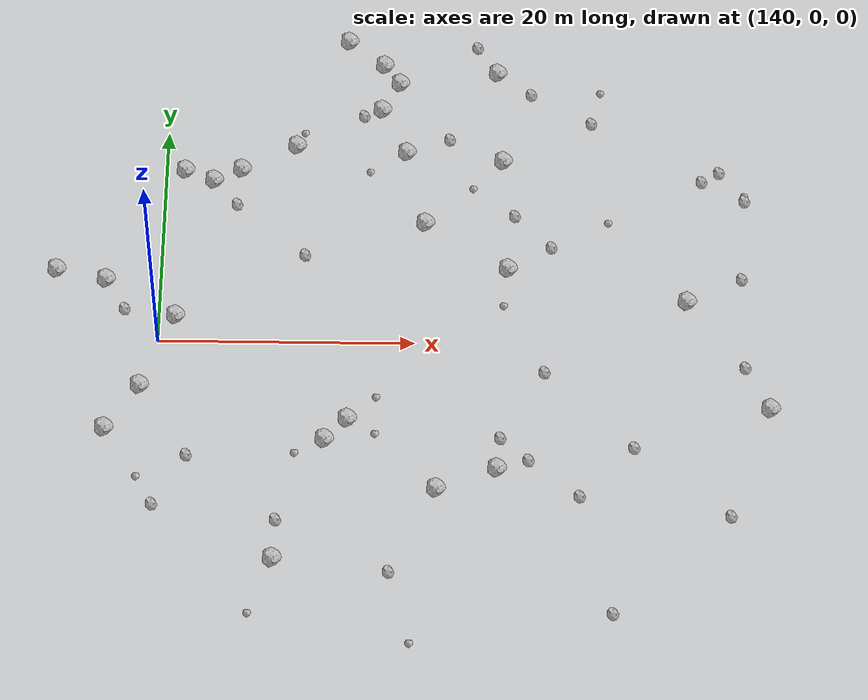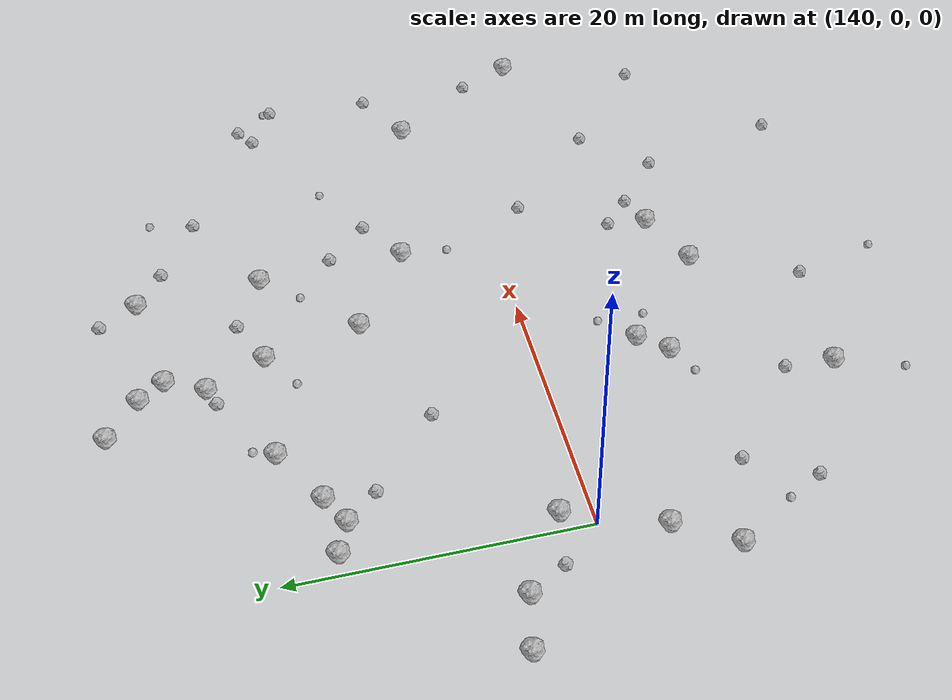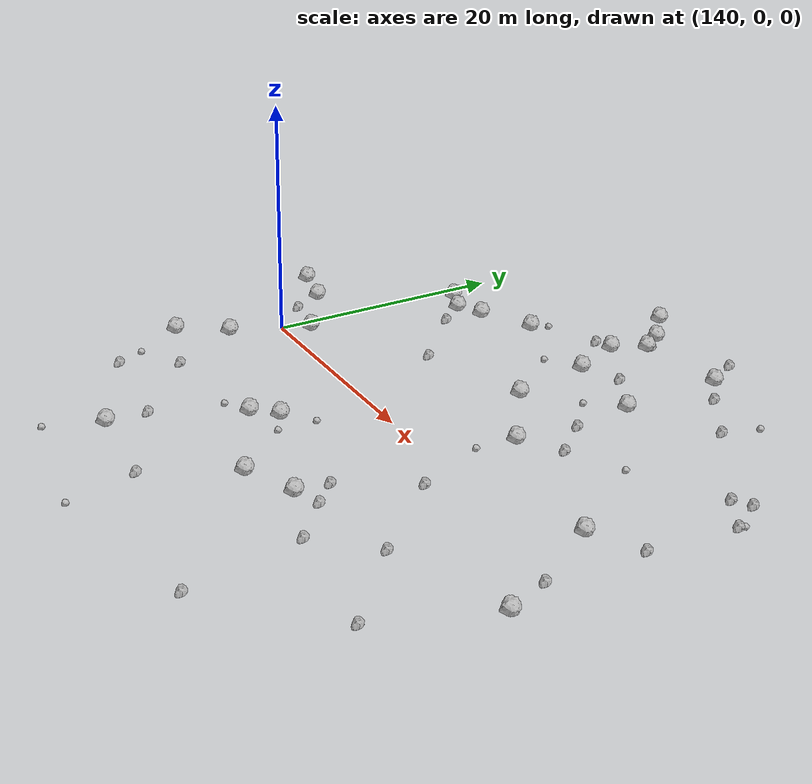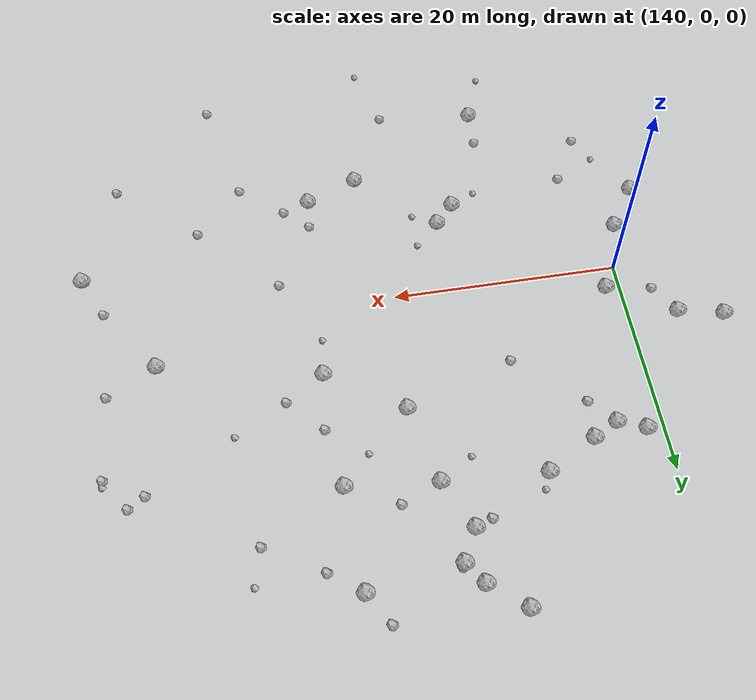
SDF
<sdf version="1.6">
 <world name="default">
  <include><uri>model://sun</uri></include>
  <model name="rock1_4_2">
   <include><uri>model://rock1</uri><pose>146.01292373861213 16.321096230633174 0.5 0 0 0</pose></include>
  </model>
  <model name="rock1_4_3">
   <include><uri>model://rock1</uri><pose>153.18893208974066 -9.077278653171142 0.5 0 0 0</pose></include>
  </model>
  <model name="rock1_4_4">
   <include><uri>model://rock1</uri><pose>166.39945779794243 26.169394335158373 0.5 0 0 0</pose></include>
  </model>
  <model name="rock1_4_5">
   <include><uri>model://rock1</uri><pose>138.83320970277157 -4.358342526872093 0.5 0 0 0</pose></include>
  </model>
  <model name="rock1_4_6">
   <include><uri>model://rock1</uri><pose>161.76033162731838 -13.393764174916889 0.5 0 0 0</pose></include>
  </model>
  <model name="rock1_4_7">
   <include><uri>model://rock1</uri><pose>157.12143858758608 22.357590255763135 0.5 0 0 0</pose></include>
  </model>
  <model name="rock1_4_8">
   <include><uri>model://rock1</uri><pose>141.5076263320921 16.1580135212961 0.5 0 0 0</pose></include>
  </model>
  <model name="rock1_4_9">
   <include><uri>model://rock1</uri><pose>160.70289378506877 11.222318924339874 0.5 0 0 0</pose></include>
  </model>
  <model name="rock1_4_10">
   <include><uri>model://rock1</uri><pose>154.90134020988904 -7.211957616958163 0.5 0 0 0</pose></include>
  </model>
  <model name="rock1_4_11">
   <include><uri>model://rock1</uri><pose>187.36100590682446 -5.908717844583737 0.5 0 0 0</pose></include>
  </model>
  <model name="rock1_4_12">
   <include><uri>model://rock1</uri><pose>136.30847646627373 -8.268294434447437 0.5 0 0 0</pose></include>
  </model>
  <model name="rock1_4_13">
   <include><uri>model://rock1</uri><pose>166.37106005827033 -11.543052413967935 0.5 0 0 0</pose></include>
  </model>
  <model name="rock1_4_14">
   <include><uri>model://rock1</uri><pose>166.85285485012008 17.340084802821934 0.5 0 0 0</pose></include>
  </model>
  <model name="rock1_4_15">
   <include><uri>model://rock1</uri><pose>143.82640872847395 15.20666125602665 0.5 0 0 0</pose></include>
  </model>
  <model name="rock1_4_16">
   <include><uri>model://rock1</uri><pose>181.200884410853 3.9424425685026563 0.5 0 0 0</pose></include>
  </model>
  <model name="rock1_4_17">
   <include><uri>model://rock1</uri><pose>141.3300765813875 2.149493236909045 0.5 0 0 0</pose></include>
  </model>
  <model name="rock1_4_18">
   <include><uri>model://rock1</uri><pose>131.81176725146497 6.426564913343512 0.5 0 0 0</pose></include>
  </model>
  <model name="rock1_4_19">
   <include><uri>model://rock1</uri><pose>149.53249420475123 -19.67776790808795 0.5 0 0 0</pose></include>
  </model>
  <model name="rock1_4_20">
   <include><uri>model://rock1</uri><pose>167.22517279037825 6.8893104701691 0.5 0 0 0</pose></include>
  </model>
  <model name="rock1_4_21">
   <include><uri>model://rock1</uri><pose>158.51727028028034 25.05043931871679 0.5 0 0 0</pose></include>
  </model>
  <model name="rock1_4_22">
   <include><uri>model://rock1</uri><pose>159.1472753499404 18.127294659113034 0.5 0 0 0</pose></include>
  </model>
  <model name="rock1_4_23">
   <include><uri>model://rock1</uri><pose>150.34101940992736 18.684495872349117 0.5 0 0 0</pose></include>
  </model>
  <model name="rock1_4_24">
   <include><uri>model://rock1</uri><pose>154.3226682056324 29.27551309641214 0.5 0 0 0</pose></include>
  </model>
  <model name="rock1_4_25">
   <include><uri>model://rock1</uri><pose>135.74074956760685 5.522126512602036 0.5 0 0 0</pose></include>
  </model>
  <model name="rock1_4_26">
   <include><uri>model://rock1</uri><pose>157.2393273769253 26.883761720704385 0.5 0 0 0</pose></include>
  </model>
  <model name="rock2_4_0">
   <include><uri>model://rock2</uri><pose>137.30254289896547 2.8379808679979277 0.3 0 0 0</pose></include>
  </model>
  <model name="rock2_4_1">
   <include><uri>model://rock2</uri><pose>155.65341575014264 21.825460685432986 0.3 0 0 0</pose></include>
  </model>
  <model name="rock2_4_2">
   <include><uri>model://rock2</uri><pose>182.6106733377859 15.611531949223291 0.3 0 0 0</pose></include>
  </model>
  <model name="rock2_4_3">
   <include><uri>model://rock2</uri><pose>158.24020994842255 -20.658150123019823 0.3 0 0 0</pose></include>
  </model>
  <model name="rock2_4_4">
   <include><uri>model://rock2</uri><pose>170.0117814260331 -2.694887389129775 0.3 0 0 0</pose></include>
  </model>
  <model name="rock2_4_5">
   <include><uri>model://rock2</uri><pose>185.53204023740827 -2.0772857355108414 0.3 0 0 0</pose></include>
  </model>
  <model name="rock2_4_6">
   <include><uri>model://rock2</uri><pose>170.62615594715632 9.075677533254954 0.3 0 0 0</pose></include>
  </model>
  <model name="rock2_4_7">
   <include><uri>model://rock2</uri><pose>142.6612561760401 -10.544135570952548 0.3 0 0 0</pose></include>
  </model>
  <model name="rock2_4_8">
   <include><uri>model://rock2</uri><pose>172.61419892302308 -13.87257291305081 0.3 0 0 0</pose></include>
  </model>
  <model name="rock2_4_9">
   <include><uri>model://rock2</uri><pose>164.7602069678603 28.889613603691643 0.3 0 0 0</pose></include>
  </model>
  <model name="rock2_4_10">
   <include><uri>model://rock2</uri><pose>184.02752224285433 -15.488511243663263 0.3 0 0 0</pose></include>
  </model>
  <model name="rock2_4_11">
   <include><uri>model://rock2</uri><pose>166.60204745124207 -8.73587043395533 0.3 0 0 0</pose></include>
  </model>
  <model name="rock2_4_12">
   <include><uri>model://rock2</uri><pose>173.90402734206452 21.290573367542926 0.3 0 0 0</pose></include>
  </model>
  <model name="rock2_4_13">
   <include><uri>model://rock2</uri><pose>174.9793263869394 -24.05334061062311 0.3 0 0 0</pose></include>
  </model>
  <model name="rock2_4_14">
   <include><uri>model://rock2</uri><pose>158.72523260248926 25.340408754108495 0.3 0 0 0</pose></include>
  </model>
  <model name="rock2_4_15">
   <include><uri>model://rock2</uri><pose>168.75646064646384 -10.7027938267329 0.3 0 0 0</pose></include>
  </model>
  <model name="rock2_4_16">
   <include><uri>model://rock2</uri><pose>167.74647065285782 12.081618504400438 0.3 0 0 0</pose></include>
  </model>
  <model name="rock2_4_17">
   <include><uri>model://rock2</uri><pose>151.25053207557738 8.116845848225609 0.3 0 0 0</pose></include>
  </model>
  <model name="rock2_4_18">
   <include><uri>model://rock2</uri><pose>149.64062603335677 -16.21478991345475 0.3 0 0 0</pose></include>
  </model>
  <model name="rock2_4_19">
   <include><uri>model://rock2</uri><pose>162.549312771943 19.5480542247276 0.3 0 0 0</pose></include>
  </model>
  <model name="rock2_4_20">
   <include><uri>model://rock2</uri><pose>184.02079670469772 16.521770998833603 0.3 0 0 0</pose></include>
  </model>
  <model name="rock2_4_21">
   <include><uri>model://rock2</uri><pose>176.81857040117956 -9.473282233490426 0.3 0 0 0</pose></include>
  </model>
  <model name="rock2_4_22">
   <include><uri>model://rock2</uri><pose>145.7140172654489 12.962635101188418 0.3 0 0 0</pose></include>
  </model>
  <model name="rock2_4_23">
   <include><uri>model://rock2</uri><pose>185.95604634731785 13.757390072928217 0.3 0 0 0</pose></include>
  </model>
  <model name="rock2_4_24">
   <include><uri>model://rock2</uri><pose>169.09536855043055 24.147157159586 0.3 0 0 0</pose></include>
  </model>
  <model name="rock2_4_25">
   <include><uri>model://rock2</uri><pose>185.51383199562665 6.219216738672863 0.3 0 0 0</pose></include>
  </model>
  <model name="rock2_4_26">
   <include><uri>model://rock2</uri><pose>140.23147359251556 -14.93603950942773 0.3 0 0 0</pose></include>
  </model>
  <model name="rock3_4_0">
   <include><uri>model://rock3</uri><pose>138.91974819978367 -12.492842220414474 0.2 0 0 0</pose></include>
  </model>
  <model name="rock3_4_1">
   <include><uri>model://rock3</uri><pose>175.12652068603148 11.517728589550735 0.2 0 0 0</pose></include>
  </model>
  <model name="rock3_4_2">
   <include><uri>model://rock3</uri><pose>157.01033753142184 -8.449675034842244 0.2 0 0 0</pose></include>
  </model>
  <model name="rock3_4_3">
   <include><uri>model://rock3</uri><pose>150.93206468906786 20.072666208641188 0.2 0 0 0</pose></include>
  </model>
  <model name="rock3_4_4">
   <include><uri>model://rock3</uri><pose>150.90078941100495 -10.23723263246886 0.2 0 0 0</pose></include>
  </model>
  <model name="rock3_4_5">
   <include><uri>model://rock3</uri><pose>157.04958637294843 -5.129591259955863 0.2 0 0 0</pose></include>
  </model>
  <model name="rock3_4_6">
   <include><uri>model://rock3</uri><pose>166.86297170216298 3.4894722272712926 0.2 0 0 0</pose></include>
  </model>
  <model name="rock3_4_7">
   <include><uri>model://rock3</uri><pose>159.85997355656752 -26.73507809761409 0.2 0 0 0</pose></include>
  </model>
  <model name="rock3_4_8">
   <include><uri>model://rock3</uri><pose>164.4488465890147 14.731176786011659 0.2 0 0 0</pose></include>
  </model>
  <model name="rock3_4_9">
   <include><uri>model://rock3</uri><pose>185.96554413167166 14.263800273926577 0.2 0 0 0</pose></include>
  </model>
  <model name="rock3_4_10">
   <include><uri>model://rock3</uri><pose>174.65644192029907 24.382963548948524 0.2 0 0 0</pose></include>
  </model>
  <model name="rock3_4_11">
   <include><uri>model://rock3</uri><pose>147.79864647123168 -24.31710609633435 0.2 0 0 0</pose></include>
  </model>
  <model name="rock3_4_12">
   <include><uri>model://rock3</uri><pose>156.2393765673531 16.283109497123277 0.2 0 0 0</pose></include>
  </model>
 </world>
</sdf>
